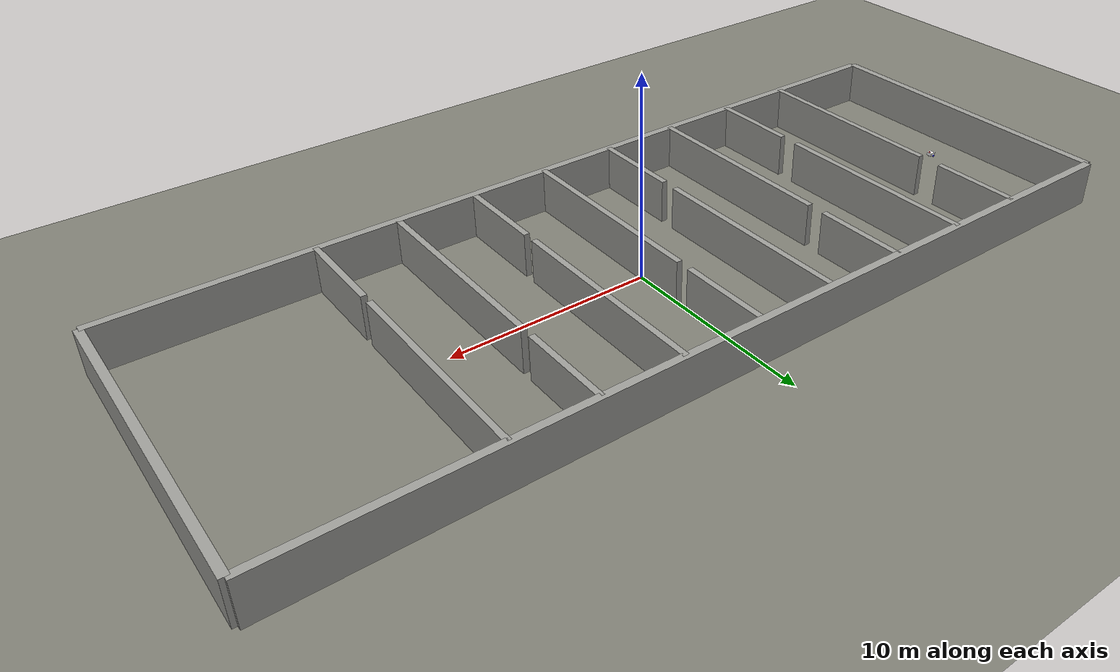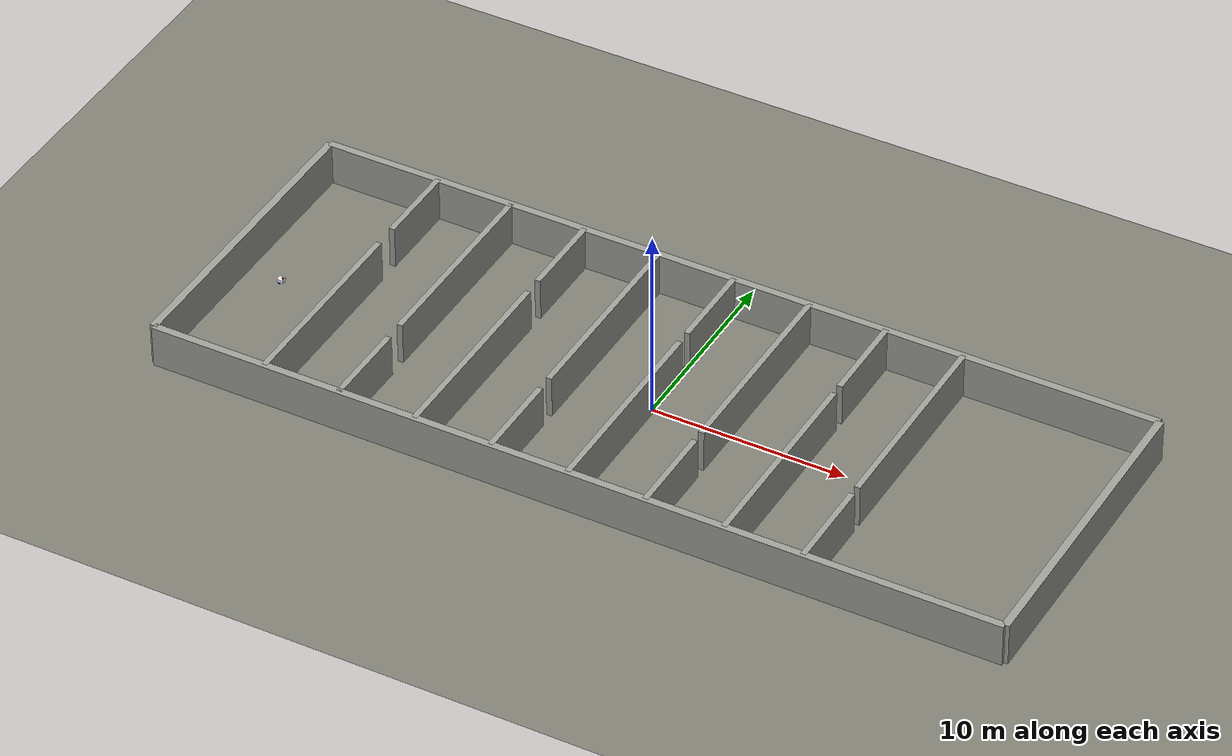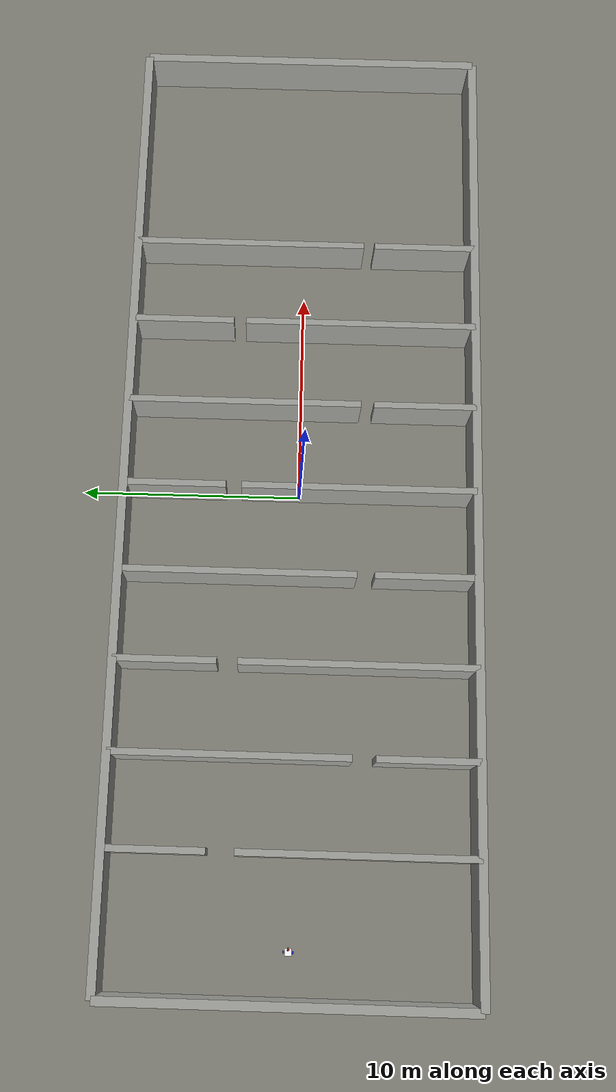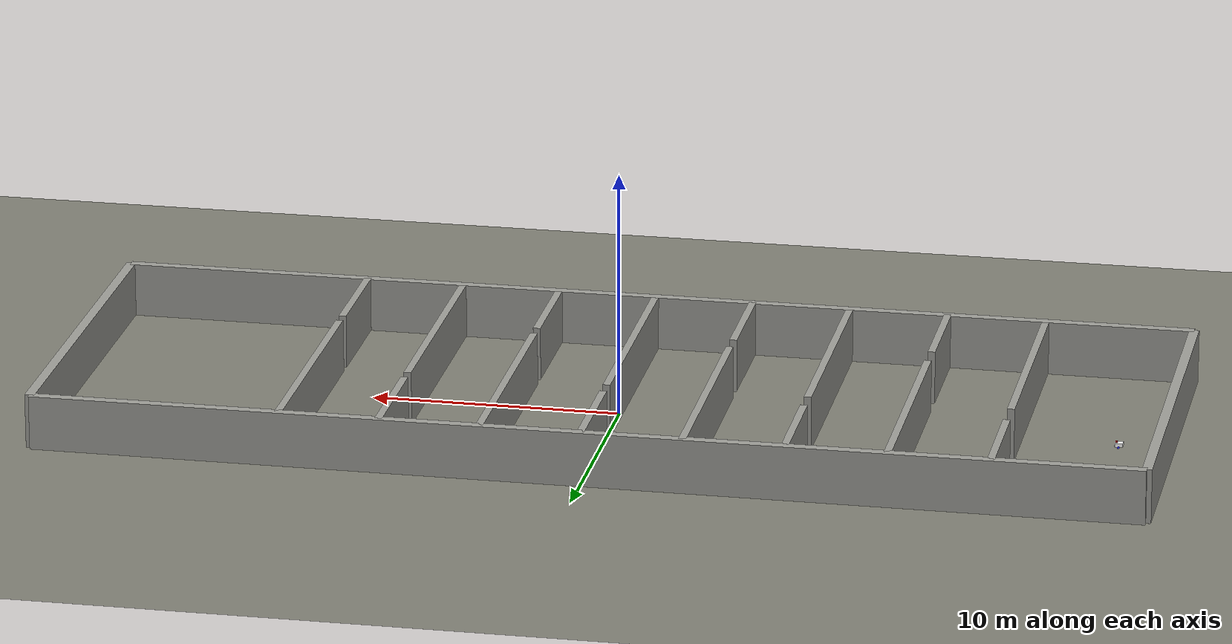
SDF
<?xml version="1.0"?>
<!-- GENERATED by src/nav/scripts/build_world.py - edit the world definition in
     src/nav/scripts/worldgen/worlds/, not this file. -->
<sdf version="1.6">
  <world name="w5_door_gauntlet">
    <physics name="4ms" type="ignored">
      <max_step_size>0.004</max_step_size>
      <real_time_factor>1.0</real_time_factor>
    </physics>
    <plugin filename="ignition-gazebo-physics-system" name="gz::sim::systems::Physics"/>
    <plugin filename="ignition-gazebo-scene-broadcaster-system" name="gz::sim::systems::SceneBroadcaster"/>
    <plugin filename="ignition-gazebo-user-commands-system" name="gz::sim::systems::UserCommands"/>
    <plugin filename="ignition-gazebo-sensors-system" name="gz::sim::systems::Sensors">
      <render_engine>ogre2</render_engine>
    </plugin>

    <gui fullscreen="false">
      <plugin filename="MinimalScene" name="3D View">
        <ignition-gui>
          <title>3D View</title>
          <property type="bool" key="showTitleBar">false</property>
          <property type="string" key="state">docked</property>
        </ignition-gui>
        <engine>ogre2</engine>
        <scene>scene</scene>
        <ambient_light>0.5 0.5 0.5</ambient_light>
        <background_color>0.8 0.85 0.9</background_color>
        <camera_pose>-60 -60 45 0 0.5 0.8</camera_pose>
      </plugin>
      <plugin filename="GzSceneManager" name="Scene Manager">
        <ignition-gui>
          <property key="resizable" type="bool">false</property>
          <property key="width" type="double">5</property>
          <property key="height" type="double">5</property>
          <property key="state" type="string">floating</property>
          <property key="showTitleBar" type="bool">false</property>
        </ignition-gui>
      </plugin>
      <plugin filename="InteractiveViewControl" name="Interactive view control">
        <ignition-gui>
          <property key="resizable" type="bool">false</property>
          <property key="width" type="double">5</property>
          <property key="height" type="double">5</property>
          <property key="state" type="string">floating</property>
          <property key="showTitleBar" type="bool">false</property>
        </ignition-gui>
      </plugin>
    </gui>

    <!-- Directional light high above (z=500) like our other worlds: a light posed
         inside the sensing volume was once misread as geometry by the software
         depth camera (emap step 11). -->
    <light type="directional" name="sun">
      <cast_shadows>true</cast_shadows>
      <pose>0 0 500 0 0 0</pose>
      <diffuse>0.85 0.85 0.8 1</diffuse>
      <specular>0.2 0.2 0.2 1</specular>
      <direction>-0.4 0.2 -0.9</direction>
    </light>

    <model name="ground_plane">
      <static>true</static>
      <pose>0 0 0.0 0 0 0</pose>
      <link name="link">
        <collision name="collision">
          <geometry><plane><normal>0 0 1</normal><size>300.0 300.0</size></plane></geometry>
        </collision>
        <visual name="visual">
          <geometry><plane><normal>0 0 1</normal><size>300.0 300.0</size></plane></geometry>
          <material><ambient>0.5 0.5 0.46 1</ambient><diffuse>0.5 0.5 0.46 1</diffuse><specular>0.05 0.05 0.05 1</specular></material>
        </visual>
      </link>
    </model>

    <model name="hall_S0"><static>true</static><pose>0.0000 -8.0000 1.1000 0 0 0.00000</pose><link name="link"><collision name="c"><geometry><box><size>44.0000 0.4000 2.2000</size></box></geometry></collision><visual name="v"><geometry><box><size>44.0000 0.4000 2.2000</size></box></geometry><material><ambient>0.620 0.620 0.600 1</ambient><diffuse>0.620 0.620 0.600 1</diffuse><specular>0.1 0.1 0.1 1</specular></material></visual></link></model>
    <model name="hall_N0"><static>true</static><pose>0.0000 8.0000 1.1000 0 0 0.00000</pose><link name="link"><collision name="c"><geometry><box><size>44.0000 0.4000 2.2000</size></box></geometry></collision><visual name="v"><geometry><box><size>44.0000 0.4000 2.2000</size></box></geometry><material><ambient>0.620 0.620 0.600 1</ambient><diffuse>0.620 0.620 0.600 1</diffuse><specular>0.1 0.1 0.1 1</specular></material></visual></link></model>
    <model name="hall_W0"><static>true</static><pose>-22.0000 0.0000 1.1000 0 0 1.57080</pose><link name="link"><collision name="c"><geometry><box><size>16.0000 0.4000 2.2000</size></box></geometry></collision><visual name="v"><geometry><box><size>16.0000 0.4000 2.2000</size></box></geometry><material><ambient>0.620 0.620 0.600 1</ambient><diffuse>0.620 0.620 0.600 1</diffuse><specular>0.1 0.1 0.1 1</specular></material></visual></link></model>
    <model name="hall_E0"><static>true</static><pose>22.0000 0.0000 1.1000 0 0 1.57080</pose><link name="link"><collision name="c"><geometry><box><size>16.0000 0.4000 2.2000</size></box></geometry></collision><visual name="v"><geometry><box><size>16.0000 0.4000 2.2000</size></box></geometry><material><ambient>0.620 0.620 0.600 1</ambient><diffuse>0.620 0.620 0.600 1</diffuse><specular>0.1 0.1 0.1 1</specular></material></visual></link></model>
    <model name="w1_s"><static>true</static><pose>-16.0000 -2.8000 1.1000 0 0 1.57080</pose><link name="link"><collision name="c"><geometry><box><size>10.4000 0.3000 2.2000</size></box></geometry></collision><visual name="v"><geometry><box><size>10.4000 0.3000 2.2000</size></box></geometry><material><ambient>0.620 0.620 0.600 1</ambient><diffuse>0.620 0.620 0.600 1</diffuse><specular>0.1 0.1 0.1 1</specular></material></visual></link></model>
    <model name="w1_n"><static>true</static><pose>-16.0000 5.8000 1.1000 0 0 1.57080</pose><link name="link"><collision name="c"><geometry><box><size>4.4000 0.3000 2.2000</size></box></geometry></collision><visual name="v"><geometry><box><size>4.4000 0.3000 2.2000</size></box></geometry><material><ambient>0.620 0.620 0.600 1</ambient><diffuse>0.620 0.620 0.600 1</diffuse><specular>0.1 0.1 0.1 1</specular></material></visual></link></model>
    <model name="w2_s"><static>true</static><pose>-12.0000 -5.7500 1.1000 0 0 1.57080</pose><link name="link"><collision name="c"><geometry><box><size>4.5000 0.3000 2.2000</size></box></geometry></collision><visual name="v"><geometry><box><size>4.5000 0.3000 2.2000</size></box></geometry><material><ambient>0.620 0.620 0.600 1</ambient><diffuse>0.620 0.620 0.600 1</diffuse><specular>0.1 0.1 0.1 1</specular></material></visual></link></model>
    <model name="w2_n"><static>true</static><pose>-12.0000 2.7500 1.1000 0 0 1.57080</pose><link name="link"><collision name="c"><geometry><box><size>10.5000 0.3000 2.2000</size></box></geometry></collision><visual name="v"><geometry><box><size>10.5000 0.3000 2.2000</size></box></geometry><material><ambient>0.620 0.620 0.600 1</ambient><diffuse>0.620 0.620 0.600 1</diffuse><specular>0.1 0.1 0.1 1</specular></material></visual></link></model>
    <model name="w3_s"><static>true</static><pose>-8.0000 -2.7250 1.1000 0 0 1.57080</pose><link name="link"><collision name="c"><geometry><box><size>10.5500 0.3000 2.2000</size></box></geometry></collision><visual name="v"><geometry><box><size>10.5500 0.3000 2.2000</size></box></geometry><material><ambient>0.620 0.620 0.600 1</ambient><diffuse>0.620 0.620 0.600 1</diffuse><specular>0.1 0.1 0.1 1</specular></material></visual></link></model>
    <model name="w3_n"><static>true</static><pose>-8.0000 5.7250 1.1000 0 0 1.57080</pose><link name="link"><collision name="c"><geometry><box><size>4.5500 0.3000 2.2000</size></box></geometry></collision><visual name="v"><geometry><box><size>4.5500 0.3000 2.2000</size></box></geometry><material><ambient>0.620 0.620 0.600 1</ambient><diffuse>0.620 0.620 0.600 1</diffuse><specular>0.1 0.1 0.1 1</specular></material></visual></link></model>
    <model name="w4_s"><static>true</static><pose>-4.0000 -5.7000 1.1000 0 0 1.57080</pose><link name="link"><collision name="c"><geometry><box><size>4.6000 0.3000 2.2000</size></box></geometry></collision><visual name="v"><geometry><box><size>4.6000 0.3000 2.2000</size></box></geometry><material><ambient>0.620 0.620 0.600 1</ambient><diffuse>0.620 0.620 0.600 1</diffuse><specular>0.1 0.1 0.1 1</specular></material></visual></link></model>
    <model name="w4_n"><static>true</static><pose>-4.0000 2.7000 1.1000 0 0 1.57080</pose><link name="link"><collision name="c"><geometry><box><size>10.6000 0.3000 2.2000</size></box></geometry></collision><visual name="v"><geometry><box><size>10.6000 0.3000 2.2000</size></box></geometry><material><ambient>0.620 0.620 0.600 1</ambient><diffuse>0.620 0.620 0.600 1</diffuse><specular>0.1 0.1 0.1 1</specular></material></visual></link></model>
    <model name="w5_s"><static>true</static><pose>0.0000 -2.6750 1.1000 0 0 1.57080</pose><link name="link"><collision name="c"><geometry><box><size>10.6500 0.3000 2.2000</size></box></geometry></collision><visual name="v"><geometry><box><size>10.6500 0.3000 2.2000</size></box></geometry><material><ambient>0.620 0.620 0.600 1</ambient><diffuse>0.620 0.620 0.600 1</diffuse><specular>0.1 0.1 0.1 1</specular></material></visual></link></model>
    <model name="w5_n"><static>true</static><pose>0.0000 5.6750 1.1000 0 0 1.57080</pose><link name="link"><collision name="c"><geometry><box><size>4.6500 0.3000 2.2000</size></box></geometry></collision><visual name="v"><geometry><box><size>4.6500 0.3000 2.2000</size></box></geometry><material><ambient>0.620 0.620 0.600 1</ambient><diffuse>0.620 0.620 0.600 1</diffuse><specular>0.1 0.1 0.1 1</specular></material></visual></link></model>
    <model name="w6_s"><static>true</static><pose>4.0000 -5.6500 1.1000 0 0 1.57080</pose><link name="link"><collision name="c"><geometry><box><size>4.7000 0.3000 2.2000</size></box></geometry></collision><visual name="v"><geometry><box><size>4.7000 0.3000 2.2000</size></box></geometry><material><ambient>0.620 0.620 0.600 1</ambient><diffuse>0.620 0.620 0.600 1</diffuse><specular>0.1 0.1 0.1 1</specular></material></visual></link></model>
    <model name="w6_n"><static>true</static><pose>4.0000 2.6500 1.1000 0 0 1.57080</pose><link name="link"><collision name="c"><geometry><box><size>10.7000 0.3000 2.2000</size></box></geometry></collision><visual name="v"><geometry><box><size>10.7000 0.3000 2.2000</size></box></geometry><material><ambient>0.620 0.620 0.600 1</ambient><diffuse>0.620 0.620 0.600 1</diffuse><specular>0.1 0.1 0.1 1</specular></material></visual></link></model>
    <model name="w7_s"><static>true</static><pose>8.0000 -2.6375 1.1000 0 0 1.57080</pose><link name="link"><collision name="c"><geometry><box><size>10.7250 0.3000 2.2000</size></box></geometry></collision><visual name="v"><geometry><box><size>10.7250 0.3000 2.2000</size></box></geometry><material><ambient>0.620 0.620 0.600 1</ambient><diffuse>0.620 0.620 0.600 1</diffuse><specular>0.1 0.1 0.1 1</specular></material></visual></link></model>
    <model name="w7_n"><static>true</static><pose>8.0000 5.6375 1.1000 0 0 1.57080</pose><link name="link"><collision name="c"><geometry><box><size>4.7250 0.3000 2.2000</size></box></geometry></collision><visual name="v"><geometry><box><size>4.7250 0.3000 2.2000</size></box></geometry><material><ambient>0.620 0.620 0.600 1</ambient><diffuse>0.620 0.620 0.600 1</diffuse><specular>0.1 0.1 0.1 1</specular></material></visual></link></model>
    <model name="w8_s"><static>true</static><pose>12.0000 -5.6250 1.1000 0 0 1.57080</pose><link name="link"><collision name="c"><geometry><box><size>4.7500 0.3000 2.2000</size></box></geometry></collision><visual name="v"><geometry><box><size>4.7500 0.3000 2.2000</size></box></geometry><material><ambient>0.620 0.620 0.600 1</ambient><diffuse>0.620 0.620 0.600 1</diffuse><specular>0.1 0.1 0.1 1</specular></material></visual></link></model>
    <model name="w8_n"><static>true</static><pose>12.0000 2.6250 1.1000 0 0 1.57080</pose><link name="link"><collision name="c"><geometry><box><size>10.7500 0.3000 2.2000</size></box></geometry></collision><visual name="v"><geometry><box><size>10.7500 0.3000 2.2000</size></box></geometry><material><ambient>0.620 0.620 0.600 1</ambient><diffuse>0.620 0.620 0.600 1</diffuse><specular>0.1 0.1 0.1 1</specular></material></visual></link></model>

    <include>
      <name>nav_ugv</name>
      <uri>model://nav_ugv</uri>
      <pose>-20.000 0.000 0.000 0 0 0.0000</pose>
      <plugin filename="ignition-gazebo-diff-drive-system" name="gz::sim::systems::DiffDrive">
        <left_joint>left_wheel_joint</left_joint>
        <left_joint>rear_left_wheel_joint</left_joint>
        <right_joint>right_wheel_joint</right_joint>
        <right_joint>rear_right_wheel_joint</right_joint>
        <wheel_separation>0.49</wheel_separation><!-- effective: a skid-steer robot slips, so DiffDrive must be told a wider track than the real 0.3756 m (measured: turns at the commanded rate; see models/nav_ugv/model.sdf) -->
        <wheel_radius>0.098</wheel_radius>
        <topic>cmd_vel</topic>
        <odom_topic>odometry</odom_topic>
        <frame_id>nav_ugv/wheel_odom</frame_id>
        <child_frame_id>nav_ugv/wheel_odom_base</child_frame_id>
        <odom_publish_frequency>30</odom_publish_frequency>
      </plugin>
      <plugin filename="ignition-gazebo-odometry-publisher-system" name="gz::sim::systems::OdometryPublisher">
        <dimensions>2</dimensions>
        <odom_frame>nav_ugv/odom</odom_frame>
        <robot_base_frame>nav_ugv/base_link</robot_base_frame>
        <odom_publish_frequency>30</odom_publish_frequency>
      </plugin>
    </include>

    <model name="overhead_overview_camera">
      <static>true</static>
      <pose>0.00 0.00 150.0 0 1.5707963 1.5707963</pose>
      <link name="link">
        <sensor name="room_overview_camera" type="camera">
          <always_on>true</always_on>
          <update_rate>1.0</update_rate>
          <topic>/room_overhead/image</topic>
          <camera>
            <horizontal_fov>0.3043</horizontal_fov>
            <image><width>1440</width><height>1440</height></image>
            <clip><near>0.5</near><far>400</far></clip>
          </camera>
        </sensor>
      </link>
    </model>

  </world>
</sdf>

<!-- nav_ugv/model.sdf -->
<sdf version="1.6">
  <model name="nav_ugv">
    <link name="base_link">
      <!-- Chassis center sits at wheel_radius + chassis_z/2 = 0.05 + 0.075
           = 0.125m above the ground - just tall enough that the box's
           bottom face clears the wheels' contact patch. -->
      <pose>0 0 0.125 0 0 0</pose>
      <inertial>
        <mass>1.5</mass>
        <inertia>
          <ixx>0.0138</ixx>
          <ixy>0</ixy>
          <ixz>0</ixz>
          <iyy>0.0138</iyy>
          <iyz>0</iyz>
          <izz>0.0225</izz>
        </inertia>
      </inertial>
      <visual name="chassis_visual">
        <geometry>
          <box>
            <size>0.3 0.3 0.15</size>
          </box>
        </geometry>
        <material>
          <ambient>1 1 1 1</ambient>
          <diffuse>1 1 1 1</diffuse>
          <specular>0.3 0.3 0.3 1</specular>
        </material>
      </visual>
      <collision name="chassis_collision">
        <geometry>
          <box>
            <size>0.3 0.3 0.15</size>
          </box>
        </geometry>
      </collision>

      <visual name="lidar_visual">
        <pose>0.1 0 0.095 0 0 0</pose>
        <geometry>
          <cylinder>
            <radius>0.05</radius>
            <length>0.04</length>
          </cylinder>
        </geometry>
        <material>
          <ambient>0.6 0 0 1</ambient>
          <diffuse>0.6 0 0 1</diffuse>
        </material>
      </visual>
      <sensor name="lidar" type="gpu_lidar">
        <pose>0.1 0 0.095 0 0 0</pose>
        <topic>nav_ugv/scan</topic>
        <update_rate>10</update_rate>
        <always_on>true</always_on>
        <visualize>false</visualize>
        <lidar>
          <scan>
            <horizontal>
              <samples>360</samples>
              <resolution>1</resolution>
              <min_angle>-3.14159</min_angle>
              <max_angle>3.14159</max_angle>
            </horizontal>
            <vertical>
              <samples>1</samples>
              <resolution>1</resolution>
              <min_angle>0</min_angle>
              <max_angle>0</max_angle>
            </vertical>
          </scan>
          <range>
            <min>0.3</min>
            <max>12.0</max>
            <resolution>0.01</resolution>
          </range>
        </lidar>
      </sensor>
    </link>

    <link name="left_wheel">
      <pose>0 0.2 0.05 -1.5708 0 0</pose>
      <inertial>
        <mass>0.2</mass>
        <inertia>
          <ixx>0.00013</ixx>
          <ixy>0</ixy>
          <ixz>0</ixz>
          <iyy>0.00013</iyy>
          <iyz>0</iyz>
          <izz>0.00025</izz>
        </inertia>
      </inertial>
      <visual name="visual">
        <geometry>
          <cylinder>
            <radius>0.05</radius>
            <length>0.04</length>
          </cylinder>
        </geometry>
        <material>
          <ambient>0.2 0.2 1 1</ambient>
          <diffuse>0.2 0.2 1 1</diffuse>
        </material>
      </visual>
      <collision name="collision">
        <geometry>
          <sphere>
            <radius>0.05</radius>
          </sphere>
        </geometry>
      </collision>
    </link>

    <link name="right_wheel">
      <pose>0 -0.2 0.05 -1.5708 0 0</pose>
      <inertial>
        <mass>0.2</mass>
        <inertia>
          <ixx>0.00013</ixx>
          <ixy>0</ixy>
          <ixz>0</ixz>
          <iyy>0.00013</iyy>
          <iyz>0</iyz>
          <izz>0.00025</izz>
        </inertia>
      </inertial>
      <visual name="visual">
        <geometry>
          <cylinder>
            <radius>0.05</radius>
            <length>0.04</length>
          </cylinder>
        </geometry>
        <material>
          <ambient>0.2 0.2 1 1</ambient>
          <diffuse>0.2 0.2 1 1</diffuse>
        </material>
      </visual>
      <collision name="collision">
        <geometry>
          <sphere>
            <radius>0.05</radius>
          </sphere>
        </geometry>
      </collision>
    </link>

    <link name="caster_wheel">
      <pose>-0.13 0 0.03 0 0 0</pose>
      <inertial>
        <mass>0.1</mass>
        <inertia>
          <ixx>0.000036</ixx>
          <ixy>0</ixy>
          <ixz>0</ixz>
          <iyy>0.000036</iyy>
          <iyz>0</iyz>
          <izz>0.000036</izz>
        </inertia>
      </inertial>
      <visual name="visual">
        <geometry>
          <sphere>
            <radius>0.03</radius>
          </sphere>
        </geometry>
        <material>
          <ambient>0.1 0.1 0.1 1</ambient>
          <diffuse>0.1 0.1 0.1 1</diffuse>
        </material>
      </visual>
      <collision name="collision">
        <geometry>
          <sphere>
            <radius>0.03</radius>
          </sphere>
        </geometry>
        <surface>
          <friction>
            <ode>
              <mu>0.001</mu>
              <mu2>0.001</mu2>
            </ode>
          </friction>
        </surface>
      </collision>
    </link>

    <link name="front_caster_wheel">
      <pose>0.13 0 0.03 0 0 0</pose>
      <inertial>
        <mass>0.1</mass>
        <inertia>
          <ixx>0.000036</ixx>
          <ixy>0</ixy>
          <ixz>0</ixz>
          <iyy>0.000036</iyy>
          <iyz>0</iyz>
          <izz>0.000036</izz>
        </inertia>
      </inertial>
      <visual name="visual">
        <geometry>
          <sphere>
            <radius>0.03</radius>
          </sphere>
        </geometry>
        <material>
          <ambient>0.1 0.1 0.1 1</ambient>
          <diffuse>0.1 0.1 0.1 1</diffuse>
        </material>
      </visual>
      <collision name="collision">
        <geometry>
          <sphere>
            <radius>0.03</radius>
          </sphere>
        </geometry>
        <surface>
          <friction>
            <ode>
              <mu>0.001</mu>
              <mu2>0.001</mu2>
            </ode>
          </friction>
        </surface>
      </collision>
    </link>

    <joint name="left_wheel_joint" type="revolute">
      <parent>base_link</parent>
      <child>left_wheel</child>
      <axis>
        <xyz>0 0 1</xyz>
        <limit>
          <lower>-1.79769e+308</lower>
          <upper>1.79769e+308</upper>
        </limit>
      </axis>
    </joint>

    <joint name="right_wheel_joint" type="revolute">
      <parent>base_link</parent>
      <child>right_wheel</child>
      <axis>
        <xyz>0 0 1</xyz>
        <limit>
          <lower>-1.79769e+308</lower>
          <upper>1.79769e+308</upper>
        </limit>
      </axis>
    </joint>

    <joint name="front_caster_wheel_joint" type="ball">
      <parent>base_link</parent>
      <child>front_caster_wheel</child>
    </joint>

    <joint name="caster_wheel_joint" type="ball">
      <parent>base_link</parent>
      <child>caster_wheel</child>
    </joint>

    <link name="front_camera_link">
      <pose>0.18 0 0.05 0 0.6 0</pose>
      <visual name="front_camera_visual">
        <geometry>
          <box>
            <size>0.03 0.05 0.03</size>
          </box>
        </geometry>
        <material>
          <ambient>0.05 0.05 0.05 1</ambient>
          <diffuse>0.05 0.05 0.05 1</diffuse>
        </material>
      </visual>
      <sensor name="front_camera" type="rgbd_camera">
        <pose>0 0 0 0 0 0</pose>
        <always_on>true</always_on>
        <update_rate>10</update_rate>
        <visualize>true</visualize>
        <topic>nav_ugv/front_camera</topic>
        <camera>
          <horizontal_fov>1.047</horizontal_fov>
          <image>
            <width>320</width>
            <height>240</height>
          </image>
          <clip>
            <near>0.1</near>
            <far>8.0</far>
          </clip>
        </camera>
      </sensor>
    </link>
    <joint name="front_camera_joint" type="fixed">
      <parent>base_link</parent>
      <child>front_camera_link</child>
    </joint>

    <link name="video_camera_link">
      <pose>0.1 0 0.22 0 0.15 0</pose>
      <inertial>
        <mass>0.02</mass>
        <inertia>
          <ixx>0.000005</ixx>
          <iyy>0.000005</iyy>
          <izz>0.000005</izz>
          <ixy>0</ixy>
          <ixz>0</ixz>
          <iyz>0</iyz>
        </inertia>
      </inertial>
      <visual name="video_camera_visual">
        <geometry>
          <box>
            <size>0.03 0.05 0.03</size>
          </box>
        </geometry>
        <material>
          <ambient>0.05 0.05 0.05 1</ambient>
          <diffuse>0.05 0.05 0.05 1</diffuse>
        </material>
      </visual>
      <sensor name="video_camera" type="camera">
        <pose>0 0 0 0 0 0</pose>
        <always_on>true</always_on>
        <update_rate>10</update_rate>
        <visualize>true</visualize>
        <topic>nav_ugv/video_camera</topic>
        <camera>
          <horizontal_fov>1.3</horizontal_fov>
          <image>
            <width>320</width>
            <height>240</height>
          </image>
          <clip>
            <near>0.1</near>
            <far>15.0</far>
          </clip>
        </camera>
      </sensor>
    </link>
    <joint name="video_camera_joint" type="fixed">
      <parent>base_link</parent>
      <child>video_camera_link</child>
    </joint>
  </model>
</sdf>
